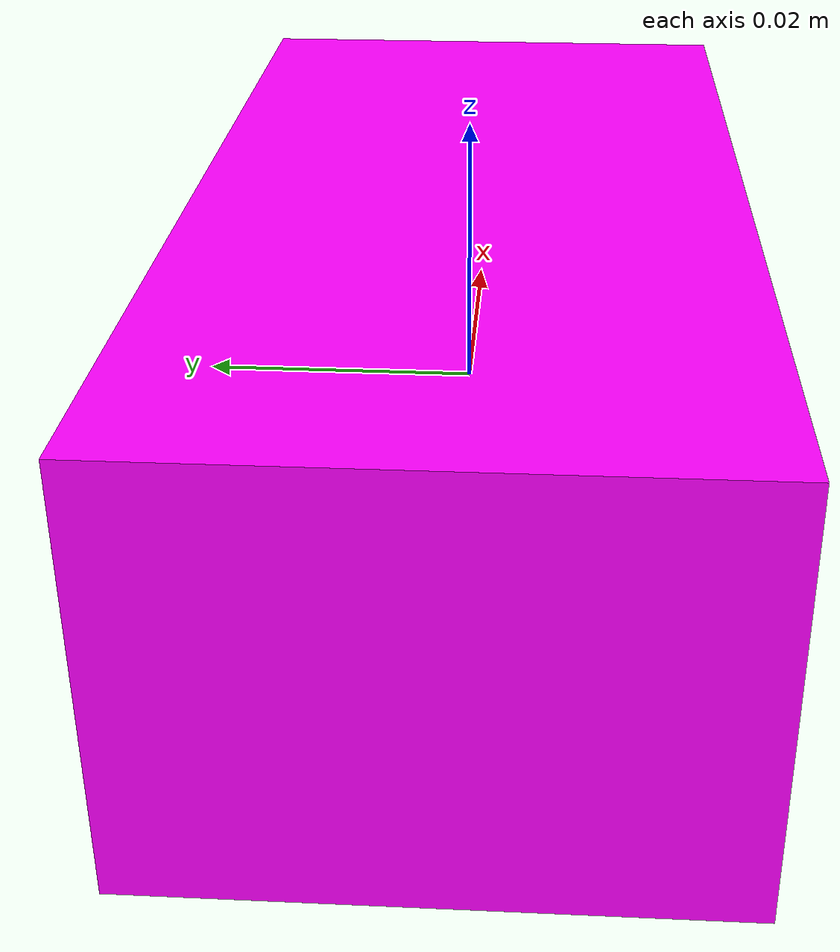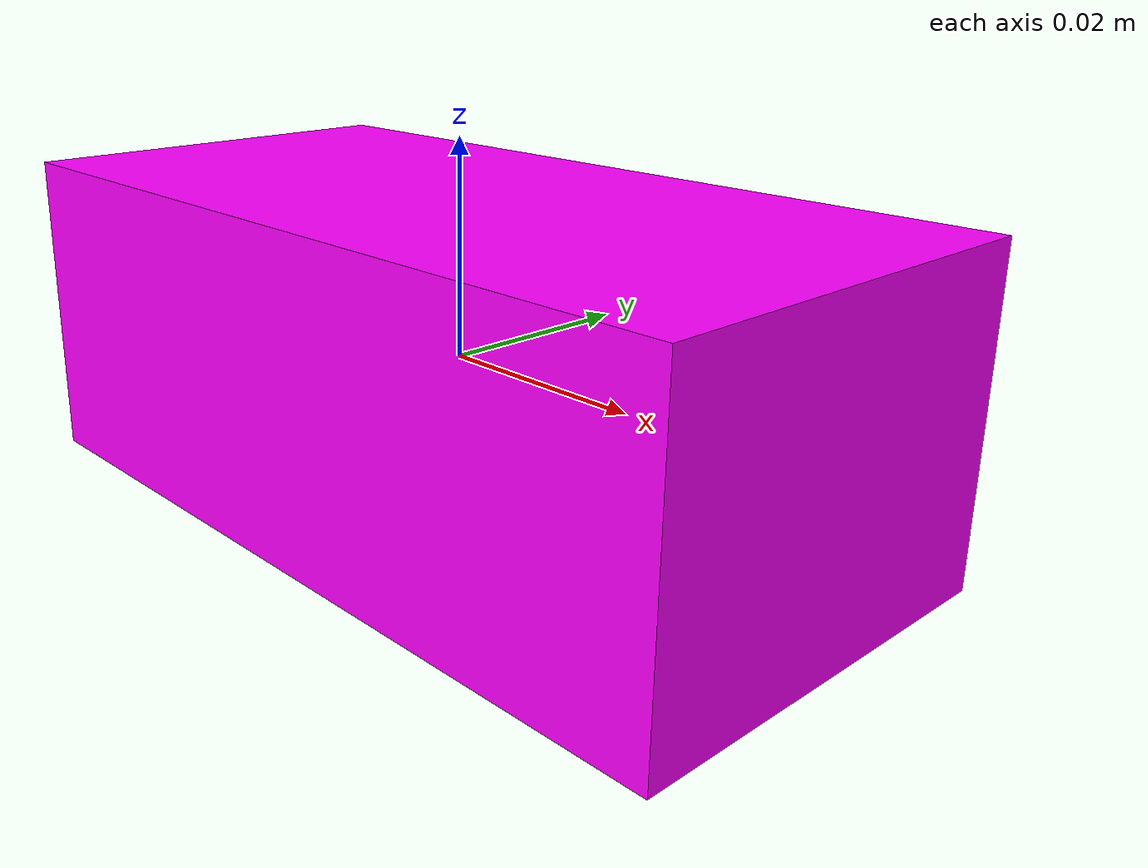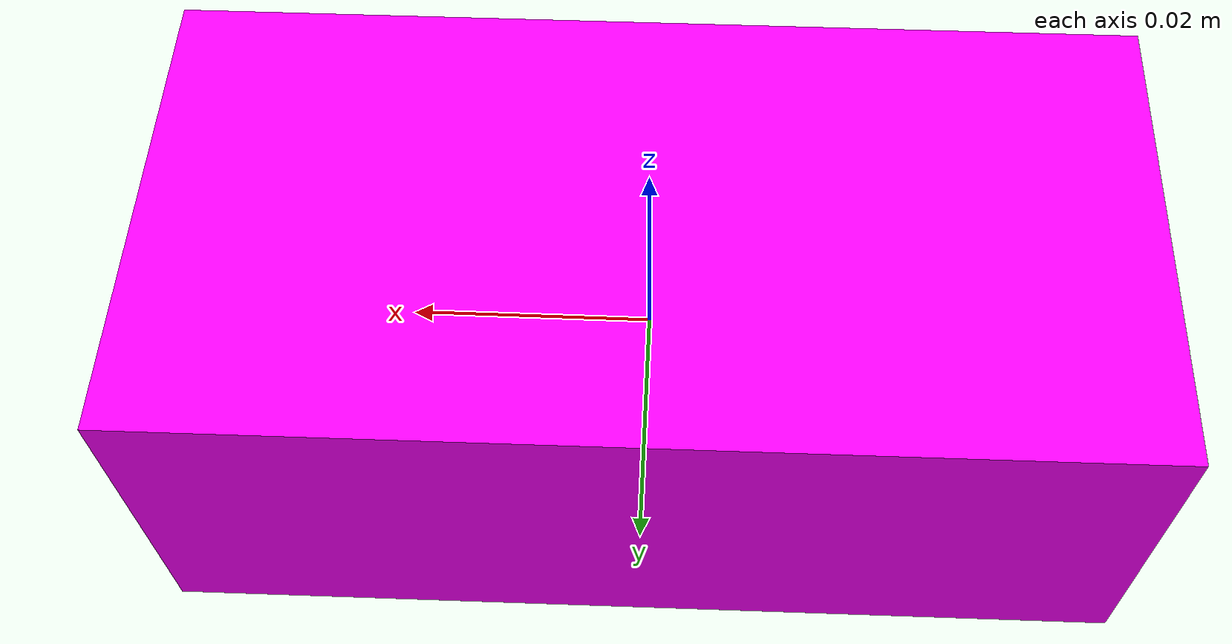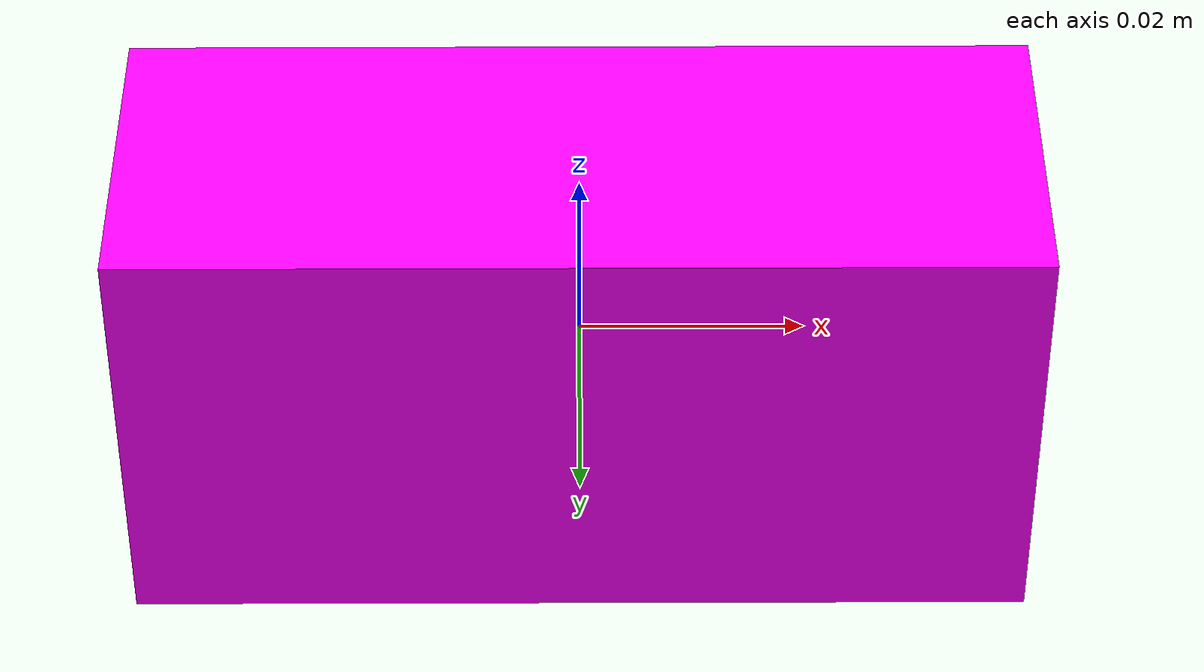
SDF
<?xml version="1.0" ?>
<sdf version="1.5">
  <model name="box_magenta">
    <link name="link">
      <inertial>
        <mass>0.12</mass>
        <inertia>
          <ixx>0.0002</ixx>
          <iyy>0.00013</iyy>
          <izz>0.00013</izz>
        </inertia>
      </inertial>
      <collision name="collision">
        <geometry>
          <box>
            <size>0.08 0.04 0.03</size>
          </box>
        </geometry>
      </collision>
      <visual name="visual">
        <geometry>
          <box>
            <size>0.08 0.04 0.03</size>
          </box>
        </geometry>
        <material>
          <ambient>1 0 1 1</ambient>
          <diffuse>1 0 1 1</diffuse>
        </material>
      </visual>
    </link>
  </model>
</sdf>
